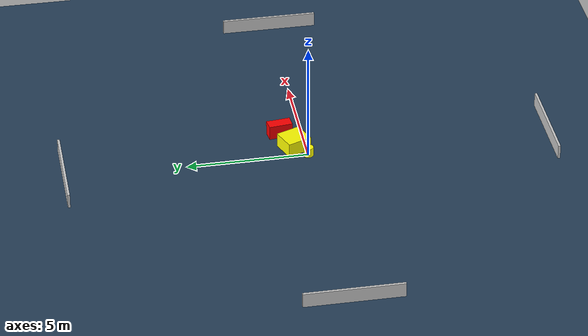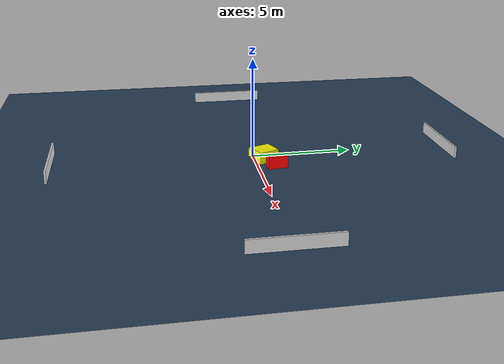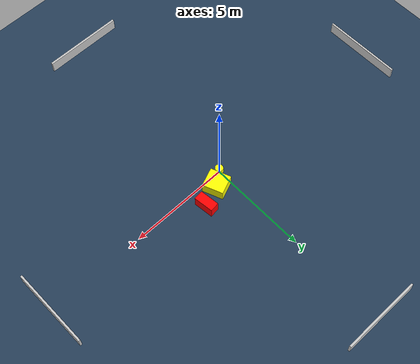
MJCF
<?xml version="1.0" ?>
<mujoco model="generated_environment">
  <option timestep="0.01" integrator="RK4" cone="elliptic"/>
  <default>
    <geom density="1"/>
  </default>
  <asset>
    <texture builtin="gradient" height="3072" name="skybox" rgb1="0.3 0.5 0.7" rgb2="0 0 0" type="skybox" width="512"/>
    <texture builtin="checker" height="300" name="groundplane" rgb1="0.2 0.3 0.4" rgb2="0.1 0.2 0.3" type="2d" width="300"/>
    <material name="groundplane" reflectance="0.2" texrepeat="5 5" texture="groundplane"/>
  </asset>
  <worldbody>
    <light dir="0 0 -1" directional="true" pos="0 0 1.5"/>
    <geom condim="3" friction="0.5 0.005 0.001" material="groundplane" name="floor" pos="0 0 0" size="0 0 0.05" type="plane"/>
    <body name="walls">
      <geom name="wall_1" condim="4" pos="-10.0 0.0 0.3" rgba="0.800000011920929 0.800000011920929 0.800000011920929 1.0" size="0.05 2.0 0.3" type="box"/>
      <geom name="wall_2" condim="4" pos="10.0 0.0 0.3" rgba="0.800000011920929 0.800000011920929 0.800000011920929 1.0" size="0.05 2.0 0.3" type="box"/>
      <geom name="wall_3" condim="4" pos="0.0 -10.0 0.3" rgba="0.800000011920929 0.800000011920929 0.800000011920929 1.0" size="2.0 0.05 0.3" type="box"/>
      <geom name="wall_4" condim="4" pos="0.0 10.0 0.3" rgba="0.800000011920929 0.800000011920929 0.800000011920929 1.0" size="2.0 0.05 0.3" type="box"/>
    </body>
    <body name="robot">
      <joint name="joint_x" type="slide" pos="0 0 0" axis="1 0 0"/>
      <joint name="joint_y" type="slide" pos="0 0 0" axis="0 1 0"/>
      <geom name="robot" type="cylinder" pos="0.0 0.0 0.2" size="0.2 0.2 0.0" mass="5.0" friction="1.0 0.005 0.0001" condim="4" rgba="1.0 1.0 0.0 1.0"/>
    </body>
    <body name="obstacle_1_movable">
      <geom name="obstacle_1_movable" condim="4" pos="0.6261709699938819 0.4937338318417112 0.3" euler="0 0 21.75586711438529" friction="0.0 0.005 0.001" rgba="1.0 1.0 0.0 1.0" size="0.48161313168990727 0.5195232635323384 0.3" type="box" mass="0.1"/>
      <joint type="free"/>
    </body>
    <body name="obstacle_2_static">
      <geom name="obstacle_2_static" condim="4" pos="1.6832489122829581 0.9191374643788103 0.3" euler="0 0 186.68717545155033" friction="0.0 0.005 0.001" rgba="1.0 0.0 0.0 1.0" size="0.23643872009567096 0.492380928207738 0.3" type="box"/>
    </body>
  </worldbody>
  <actuator>
    <motor name="actuator_x" joint="joint_x" gear="1" ctrlrange="-1 1"/>
    <motor name="actuator_y" joint="joint_y" gear="1" ctrlrange="-1 1"/>
  </actuator>
</mujoco>
